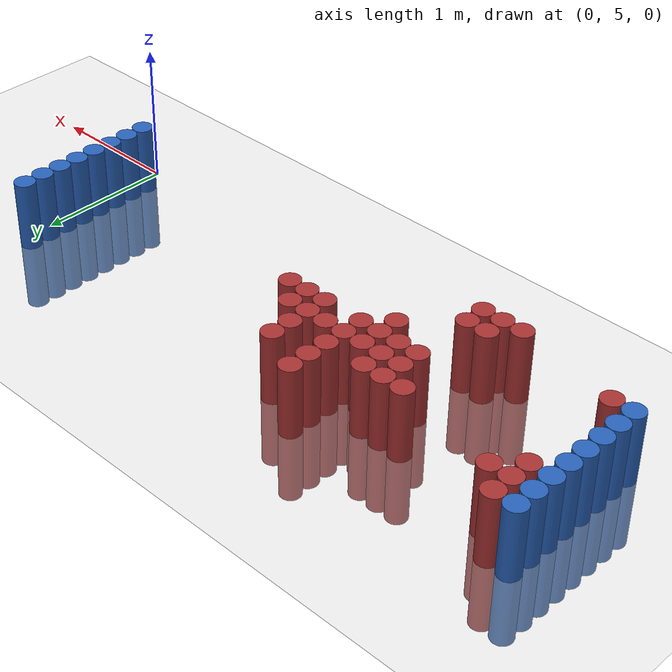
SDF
<sdf version="1.6">
 <world name="default">
  <model name="ground_plane">
   <static>1</static>
   <link name="link">
    <collision name="collision">
     <geometry><plane><normal>0 0 1</normal><size>100 100</size></plane></geometry>
     <surface><friction><ode><mu>100</mu><mu2>50</mu2></ode></friction></surface>
    </collision>
    <visual name="visual">
     <cast_shadows>0</cast_shadows>
     <geometry><plane><normal>0 0 1</normal><size>100 100</size></plane></geometry>
     <material>
      <script><uri>file://media/materials/scripts/gazebo.material</uri><name>Gazebo/Grey</name></script>
     </material>
    </visual>
   </link>
  </model>
  <model name="unit_cylinder_97">
   <static>1</static>
   <pose>-4.425000 5.325000 0.000000 0.000000 0.000000 0.000000</pose>
   <link name="link">
    <inertial>
     <mass>1</mass>
     <inertia><ixx>0.145833</ixx><ixy>0</ixy><ixz>0</ixz><iyy>0.145833</iyy><iyz>0</iyz><izz>0.125</izz></inertia>
    </inertial>
    <collision name="collision">
     <geometry><cylinder><radius>0.075000</radius><length>1</length></cylinder></geometry>
    </collision>
    <visual name="visual">
     <geometry><cylinder><radius>0.075000</radius><length>1</length></cylinder></geometry>
     <material>
      <ambient>0.152000 0.379000 0.720000 1</ambient>
      <diffuse>0.152000 0.379000 0.720000 1</diffuse>
     </material>
     <material>
      <script><name>Gazebo/Grey</name><uri>file://media/materials/scripts/gazebo.material</uri></script>
     </material>
    </visual>
   </link>
  </model>
  <model name="unit_cylinder_98">
   <static>1</static>
   <pose>-4.425000 5.475000 0.000000 0.000000 0.000000 0.000000</pose>
   <link name="link">
    <inertial>
     <mass>1</mass>
     <inertia><ixx>0.145833</ixx><ixy>0</ixy><ixz>0</ixz><iyy>0.145833</iyy><iyz>0</iyz><izz>0.125</izz></inertia>
    </inertial>
    <collision name="collision">
     <geometry><cylinder><radius>0.075000</radius><length>1</length></cylinder></geometry>
    </collision>
    <visual name="visual">
     <geometry><cylinder><radius>0.075000</radius><length>1</length></cylinder></geometry>
     <material>
      <ambient>0.152000 0.379000 0.720000 1</ambient>
      <diffuse>0.152000 0.379000 0.720000 1</diffuse>
     </material>
     <material>
      <script><name>Gazebo/Grey</name><uri>file://media/materials/scripts/gazebo.material</uri></script>
     </material>
    </visual>
   </link>
  </model>
  <model name="unit_cylinder_99">
   <static>1</static>
   <pose>-4.425000 5.625000 0.000000 0.000000 0.000000 0.000000</pose>
   <link name="link">
    <inertial>
     <mass>1</mass>
     <inertia><ixx>0.145833</ixx><ixy>0</ixy><ixz>0</ixz><iyy>0.145833</iyy><iyz>0</iyz><izz>0.125</izz></inertia>
    </inertial>
    <collision name="collision">
     <geometry><cylinder><radius>0.075000</radius><length>1</length></cylinder></geometry>
    </collision>
    <visual name="visual">
     <geometry><cylinder><radius>0.075000</radius><length>1</length></cylinder></geometry>
     <material>
      <ambient>0.152000 0.379000 0.720000 1</ambient>
      <diffuse>0.152000 0.379000 0.720000 1</diffuse>
     </material>
     <material>
      <script><name>Gazebo/Grey</name><uri>file://media/materials/scripts/gazebo.material</uri></script>
     </material>
    </visual>
   </link>
  </model>
  <model name="unit_cylinder_100">
   <static>1</static>
   <pose>-4.425000 5.775000 0.000000 0.000000 0.000000 0.000000</pose>
   <link name="link">
    <inertial>
     <mass>1</mass>
     <inertia><ixx>0.145833</ixx><ixy>0</ixy><ixz>0</ixz><iyy>0.145833</iyy><iyz>0</iyz><izz>0.125</izz></inertia>
    </inertial>
    <collision name="collision">
     <geometry><cylinder><radius>0.075000</radius><length>1</length></cylinder></geometry>
    </collision>
    <visual name="visual">
     <geometry><cylinder><radius>0.075000</radius><length>1</length></cylinder></geometry>
     <material>
      <ambient>0.152000 0.379000 0.720000 1</ambient>
      <diffuse>0.152000 0.379000 0.720000 1</diffuse>
     </material>
     <material>
      <script><name>Gazebo/Grey</name><uri>file://media/materials/scripts/gazebo.material</uri></script>
     </material>
    </visual>
   </link>
  </model>
  <model name="unit_cylinder_101">
   <static>1</static>
   <pose>-4.425000 5.925000 0.000000 0.000000 0.000000 0.000000</pose>
   <link name="link">
    <inertial>
     <mass>1</mass>
     <inertia><ixx>0.145833</ixx><ixy>0</ixy><ixz>0</ixz><iyy>0.145833</iyy><iyz>0</iyz><izz>0.125</izz></inertia>
    </inertial>
    <collision name="collision">
     <geometry><cylinder><radius>0.075000</radius><length>1</length></cylinder></geometry>
    </collision>
    <visual name="visual">
     <geometry><cylinder><radius>0.075000</radius><length>1</length></cylinder></geometry>
     <material>
      <ambient>0.152000 0.379000 0.720000 1</ambient>
      <diffuse>0.152000 0.379000 0.720000 1</diffuse>
     </material>
     <material>
      <script><name>Gazebo/Grey</name><uri>file://media/materials/scripts/gazebo.material</uri></script>
     </material>
    </visual>
   </link>
  </model>
  <model name="unit_cylinder_102">
   <static>1</static>
   <pose>-4.425000 6.075000 0.000000 0.000000 0.000000 0.000000</pose>
   <link name="link">
    <inertial>
     <mass>1</mass>
     <inertia><ixx>0.145833</ixx><ixy>0</ixy><ixz>0</ixz><iyy>0.145833</iyy><iyz>0</iyz><izz>0.125</izz></inertia>
    </inertial>
    <collision name="collision">
     <geometry><cylinder><radius>0.075000</radius><length>1</length></cylinder></geometry>
    </collision>
    <visual name="visual">
     <geometry><cylinder><radius>0.075000</radius><length>1</length></cylinder></geometry>
     <material>
      <ambient>0.152000 0.379000 0.720000 1</ambient>
      <diffuse>0.152000 0.379000 0.720000 1</diffuse>
     </material>
     <material>
      <script><name>Gazebo/Grey</name><uri>file://media/materials/scripts/gazebo.material</uri></script>
     </material>
    </visual>
   </link>
  </model>
  <model name="unit_cylinder_103">
   <static>1</static>
   <pose>-4.425000 6.225000 0.000000 0.000000 0.000000 0.000000</pose>
   <link name="link">
    <inertial>
     <mass>1</mass>
     <inertia><ixx>0.145833</ixx><ixy>0</ixy><ixz>0</ixz><iyy>0.145833</iyy><iyz>0</iyz><izz>0.125</izz></inertia>
    </inertial>
    <collision name="collision">
     <geometry><cylinder><radius>0.075000</radius><length>1</length></cylinder></geometry>
    </collision>
    <visual name="visual">
     <geometry><cylinder><radius>0.075000</radius><length>1</length></cylinder></geometry>
     <material>
      <ambient>0.152000 0.379000 0.720000 1</ambient>
      <diffuse>0.152000 0.379000 0.720000 1</diffuse>
     </material>
     <material>
      <script><name>Gazebo/Grey</name><uri>file://media/materials/scripts/gazebo.material</uri></script>
     </material>
    </visual>
   </link>
  </model>
  <model name="unit_cylinder_104">
   <static>1</static>
   <pose>-4.425000 6.375000 0.000000 0.000000 0.000000 0.000000</pose>
   <link name="link">
    <inertial>
     <mass>1</mass>
     <inertia><ixx>0.145833</ixx><ixy>0</ixy><ixz>0</ixz><iyy>0.145833</iyy><iyz>0</iyz><izz>0.125</izz></inertia>
    </inertial>
    <collision name="collision">
     <geometry><cylinder><radius>0.075000</radius><length>1</length></cylinder></geometry>
    </collision>
    <visual name="visual">
     <geometry><cylinder><radius>0.075000</radius><length>1</length></cylinder></geometry>
     <material>
      <ambient>0.152000 0.379000 0.720000 1</ambient>
      <diffuse>0.152000 0.379000 0.720000 1</diffuse>
     </material>
     <material>
      <script><name>Gazebo/Grey</name><uri>file://media/materials/scripts/gazebo.material</uri></script>
     </material>
    </visual>
   </link>
  </model>
  <model name="unit_cylinder_127">
   <static>1</static>
   <pose>-4.275000 5.325000 0.000000 0.000000 0.000000 0.000000</pose>
   <link name="link">
    <inertial>
     <mass>1</mass>
     <inertia><ixx>0.145833</ixx><ixy>0</ixy><ixz>0</ixz><iyy>0.145833</iyy><iyz>0</iyz><izz>0.125</izz></inertia>
    </inertial>
    <collision name="collision">
     <geometry><cylinder><radius>0.075000</radius><length>1</length></cylinder></geometry>
    </collision>
    <visual name="visual">
     <geometry><cylinder><radius>0.075000</radius><length>1</length></cylinder></geometry>
     <material>
      <ambient>0.648000 0.192000 0.192000 1</ambient>
      <diffuse>0.648000 0.192000 0.192000 1</diffuse>
     </material>
     <material>
      <script><name>Gazebo/Grey</name><uri>file://media/materials/scripts/gazebo.material</uri></script>
     </material>
    </visual>
   </link>
  </model>
  <model name="unit_cylinder_128">
   <static>1</static>
   <pose>-4.275000 6.075000 0.000000 0.000000 0.000000 0.000000</pose>
   <link name="link">
    <inertial>
     <mass>1</mass>
     <inertia><ixx>0.145833</ixx><ixy>0</ixy><ixz>0</ixz><iyy>0.145833</iyy><iyz>0</iyz><izz>0.125</izz></inertia>
    </inertial>
    <collision name="collision">
     <geometry><cylinder><radius>0.075000</radius><length>1</length></cylinder></geometry>
    </collision>
    <visual name="visual">
     <geometry><cylinder><radius>0.075000</radius><length>1</length></cylinder></geometry>
     <material>
      <ambient>0.648000 0.192000 0.192000 1</ambient>
      <diffuse>0.648000 0.192000 0.192000 1</diffuse>
     </material>
     <material>
      <script><name>Gazebo/Grey</name><uri>file://media/materials/scripts/gazebo.material</uri></script>
     </material>
    </visual>
   </link>
  </model>
  <model name="unit_cylinder_129">
   <static>1</static>
   <pose>-4.275000 6.225000 0.000000 0.000000 0.000000 0.000000</pose>
   <link name="link">
    <inertial>
     <mass>1</mass>
     <inertia><ixx>0.145833</ixx><ixy>0</ixy><ixz>0</ixz><iyy>0.145833</iyy><iyz>0</iyz><izz>0.125</izz></inertia>
    </inertial>
    <collision name="collision">
     <geometry><cylinder><radius>0.075000</radius><length>1</length></cylinder></geometry>
    </collision>
    <visual name="visual">
     <geometry><cylinder><radius>0.075000</radius><length>1</length></cylinder></geometry>
     <material>
      <ambient>0.648000 0.192000 0.192000 1</ambient>
      <diffuse>0.648000 0.192000 0.192000 1</diffuse>
     </material>
     <material>
      <script><name>Gazebo/Grey</name><uri>file://media/materials/scripts/gazebo.material</uri></script>
     </material>
    </visual>
   </link>
  </model>
  <model name="unit_cylinder_130">
   <static>1</static>
   <pose>-4.275000 6.375000 0.000000 0.000000 0.000000 0.000000</pose>
   <link name="link">
    <inertial>
     <mass>1</mass>
     <inertia><ixx>0.145833</ixx><ixy>0</ixy><ixz>0</ixz><iyy>0.145833</iyy><iyz>0</iyz><izz>0.125</izz></inertia>
    </inertial>
    <collision name="collision">
     <geometry><cylinder><radius>0.075000</radius><length>1</length></cylinder></geometry>
    </collision>
    <visual name="visual">
     <geometry><cylinder><radius>0.075000</radius><length>1</length></cylinder></geometry>
     <material>
      <ambient>0.648000 0.192000 0.192000 1</ambient>
      <diffuse>0.648000 0.192000 0.192000 1</diffuse>
     </material>
     <material>
      <script><name>Gazebo/Grey</name><uri>file://media/materials/scripts/gazebo.material</uri></script>
     </material>
    </visual>
   </link>
  </model>
  <model name="unit_cylinder_146">
   <static>1</static>
   <pose>-4.125000 6.225000 0.000000 0.000000 0.000000 0.000000</pose>
   <link name="link">
    <inertial>
     <mass>1</mass>
     <inertia><ixx>0.145833</ixx><ixy>0</ixy><ixz>0</ixz><iyy>0.145833</iyy><iyz>0</iyz><izz>0.125</izz></inertia>
    </inertial>
    <collision name="collision">
     <geometry><cylinder><radius>0.075000</radius><length>1</length></cylinder></geometry>
    </collision>
    <visual name="visual">
     <geometry><cylinder><radius>0.075000</radius><length>1</length></cylinder></geometry>
     <material>
      <ambient>0.648000 0.192000 0.192000 1</ambient>
      <diffuse>0.648000 0.192000 0.192000 1</diffuse>
     </material>
     <material>
      <script><name>Gazebo/Grey</name><uri>file://media/materials/scripts/gazebo.material</uri></script>
     </material>
    </visual>
   </link>
  </model>
  <model name="unit_cylinder_152">
   <static>1</static>
   <pose>-3.525000 5.175000 0.000000 0.000000 0.000000 0.000000</pose>
   <link name="link">
    <inertial>
     <mass>1</mass>
     <inertia><ixx>0.145833</ixx><ixy>0</ixy><ixz>0</ixz><iyy>0.145833</iyy><iyz>0</iyz><izz>0.125</izz></inertia>
    </inertial>
    <collision name="collision">
     <geometry><cylinder><radius>0.075000</radius><length>1</length></cylinder></geometry>
    </collision>
    <visual name="visual">
     <geometry><cylinder><radius>0.075000</radius><length>1</length></cylinder></geometry>
     <material>
      <ambient>0.648000 0.192000 0.192000 1</ambient>
      <diffuse>0.648000 0.192000 0.192000 1</diffuse>
     </material>
     <material>
      <script><name>Gazebo/Grey</name><uri>file://media/materials/scripts/gazebo.material</uri></script>
     </material>
    </visual>
   </link>
  </model>
  <model name="unit_cylinder_158">
   <static>1</static>
   <pose>-3.375000 5.175000 0.000000 0.000000 0.000000 0.000000</pose>
   <link name="link">
    <inertial>
     <mass>1</mass>
     <inertia><ixx>0.145833</ixx><ixy>0</ixy><ixz>0</ixz><iyy>0.145833</iyy><iyz>0</iyz><izz>0.125</izz></inertia>
    </inertial>
    <collision name="collision">
     <geometry><cylinder><radius>0.075000</radius><length>1</length></cylinder></geometry>
    </collision>
    <visual name="visual">
     <geometry><cylinder><radius>0.075000</radius><length>1</length></cylinder></geometry>
     <material>
      <ambient>0.648000 0.192000 0.192000 1</ambient>
      <diffuse>0.648000 0.192000 0.192000 1</diffuse>
     </material>
     <material>
      <script><name>Gazebo/Grey</name><uri>file://media/materials/scripts/gazebo.material</uri></script>
     </material>
    </visual>
   </link>
  </model>
  <model name="unit_cylinder_159">
   <static>1</static>
   <pose>-3.375000 5.325000 0.000000 0.000000 0.000000 0.000000</pose>
   <link name="link">
    <inertial>
     <mass>1</mass>
     <inertia><ixx>0.145833</ixx><ixy>0</ixy><ixz>0</ixz><iyy>0.145833</iyy><iyz>0</iyz><izz>0.125</izz></inertia>
    </inertial>
    <collision name="collision">
     <geometry><cylinder><radius>0.075000</radius><length>1</length></cylinder></geometry>
    </collision>
    <visual name="visual">
     <geometry><cylinder><radius>0.075000</radius><length>1</length></cylinder></geometry>
     <material>
      <ambient>0.648000 0.192000 0.192000 1</ambient>
      <diffuse>0.648000 0.192000 0.192000 1</diffuse>
     </material>
     <material>
      <script><name>Gazebo/Grey</name><uri>file://media/materials/scripts/gazebo.material</uri></script>
     </material>
    </visual>
   </link>
  </model>
  <model name="unit_cylinder_160">
   <static>1</static>
   <pose>-3.375000 6.075000 0.000000 0.000000 0.000000 0.000000</pose>
   <link name="link">
    <inertial>
     <mass>1</mass>
     <inertia><ixx>0.145833</ixx><ixy>0</ixy><ixz>0</ixz><iyy>0.145833</iyy><iyz>0</iyz><izz>0.125</izz></inertia>
    </inertial>
    <collision name="collision">
     <geometry><cylinder><radius>0.075000</radius><length>1</length></cylinder></geometry>
    </collision>
    <visual name="visual">
     <geometry><cylinder><radius>0.075000</radius><length>1</length></cylinder></geometry>
     <material>
      <ambient>0.648000 0.192000 0.192000 1</ambient>
      <diffuse>0.648000 0.192000 0.192000 1</diffuse>
     </material>
     <material>
      <script><name>Gazebo/Grey</name><uri>file://media/materials/scripts/gazebo.material</uri></script>
     </material>
    </visual>
   </link>
  </model>
  <model name="unit_cylinder_169">
   <static>1</static>
   <pose>-3.225000 5.175000 0.000000 0.000000 0.000000 0.000000</pose>
   <link name="link">
    <inertial>
     <mass>1</mass>
     <inertia><ixx>0.145833</ixx><ixy>0</ixy><ixz>0</ixz><iyy>0.145833</iyy><iyz>0</iyz><izz>0.125</izz></inertia>
    </inertial>
    <collision name="collision">
     <geometry><cylinder><radius>0.075000</radius><length>1</length></cylinder></geometry>
    </collision>
    <visual name="visual">
     <geometry><cylinder><radius>0.075000</radius><length>1</length></cylinder></geometry>
     <material>
      <ambient>0.648000 0.192000 0.192000 1</ambient>
      <diffuse>0.648000 0.192000 0.192000 1</diffuse>
     </material>
     <material>
      <script><name>Gazebo/Grey</name><uri>file://media/materials/scripts/gazebo.material</uri></script>
     </material>
    </visual>
   </link>
  </model>
  <model name="unit_cylinder_170">
   <static>1</static>
   <pose>-3.225000 5.325000 0.000000 0.000000 0.000000 0.000000</pose>
   <link name="link">
    <inertial>
     <mass>1</mass>
     <inertia><ixx>0.145833</ixx><ixy>0</ixy><ixz>0</ixz><iyy>0.145833</iyy><iyz>0</iyz><izz>0.125</izz></inertia>
    </inertial>
    <collision name="collision">
     <geometry><cylinder><radius>0.075000</radius><length>1</length></cylinder></geometry>
    </collision>
    <visual name="visual">
     <geometry><cylinder><radius>0.075000</radius><length>1</length></cylinder></geometry>
     <material>
      <ambient>0.648000 0.192000 0.192000 1</ambient>
      <diffuse>0.648000 0.192000 0.192000 1</diffuse>
     </material>
     <material>
      <script><name>Gazebo/Grey</name><uri>file://media/materials/scripts/gazebo.material</uri></script>
     </material>
    </visual>
   </link>
  </model>
  <model name="unit_cylinder_171">
   <static>1</static>
   <pose>-3.225000 5.775000 0.000000 0.000000 0.000000 0.000000</pose>
   <link name="link">
    <inertial>
     <mass>1</mass>
     <inertia><ixx>0.145833</ixx><ixy>0</ixy><ixz>0</ixz><iyy>0.145833</iyy><iyz>0</iyz><izz>0.125</izz></inertia>
    </inertial>
    <collision name="collision">
     <geometry><cylinder><radius>0.075000</radius><length>1</length></cylinder></geometry>
    </collision>
    <visual name="visual">
     <geometry><cylinder><radius>0.075000</radius><length>1</length></cylinder></geometry>
     <material>
      <ambient>0.648000 0.192000 0.192000 1</ambient>
      <diffuse>0.648000 0.192000 0.192000 1</diffuse>
     </material>
     <material>
      <script><name>Gazebo/Grey</name><uri>file://media/materials/scripts/gazebo.material</uri></script>
     </material>
    </visual>
   </link>
  </model>
  <model name="unit_cylinder_172">
   <static>1</static>
   <pose>-3.225000 5.925000 0.000000 0.000000 0.000000 0.000000</pose>
   <link name="link">
    <inertial>
     <mass>1</mass>
     <inertia><ixx>0.145833</ixx><ixy>0</ixy><ixz>0</ixz><iyy>0.145833</iyy><iyz>0</iyz><izz>0.125</izz></inertia>
    </inertial>
    <collision name="collision">
     <geometry><cylinder><radius>0.075000</radius><length>1</length></cylinder></geometry>
    </collision>
    <visual name="visual">
     <geometry><cylinder><radius>0.075000</radius><length>1</length></cylinder></geometry>
     <material>
      <ambient>0.648000 0.192000 0.192000 1</ambient>
      <diffuse>0.648000 0.192000 0.192000 1</diffuse>
     </material>
     <material>
      <script><name>Gazebo/Grey</name><uri>file://media/materials/scripts/gazebo.material</uri></script>
     </material>
    </visual>
   </link>
  </model>
  <model name="unit_cylinder_173">
   <static>1</static>
   <pose>-3.225000 6.075000 0.000000 0.000000 0.000000 0.000000</pose>
   <link name="link">
    <inertial>
     <mass>1</mass>
     <inertia><ixx>0.145833</ixx><ixy>0</ixy><ixz>0</ixz><iyy>0.145833</iyy><iyz>0</iyz><izz>0.125</izz></inertia>
    </inertial>
    <collision name="collision">
     <geometry><cylinder><radius>0.075000</radius><length>1</length></cylinder></geometry>
    </collision>
    <visual name="visual">
     <geometry><cylinder><radius>0.075000</radius><length>1</length></cylinder></geometry>
     <material>
      <ambient>0.648000 0.192000 0.192000 1</ambient>
      <diffuse>0.648000 0.192000 0.192000 1</diffuse>
     </material>
     <material>
      <script><name>Gazebo/Grey</name><uri>file://media/materials/scripts/gazebo.material</uri></script>
     </material>
    </visual>
   </link>
  </model>
  <model name="unit_cylinder_180">
   <static>1</static>
   <pose>-3.075000 5.775000 0.000000 0.000000 0.000000 0.000000</pose>
   <link name="link">
    <inertial>
     <mass>1</mass>
     <inertia><ixx>0.145833</ixx><ixy>0</ixy><ixz>0</ixz><iyy>0.145833</iyy><iyz>0</iyz><izz>0.125</izz></inertia>
    </inertial>
    <collision name="collision">
     <geometry><cylinder><radius>0.075000</radius><length>1</length></cylinder></geometry>
    </collision>
    <visual name="visual">
     <geometry><cylinder><radius>0.075000</radius><length>1</length></cylinder></geometry>
     <material>
      <ambient>0.648000 0.192000 0.192000 1</ambient>
      <diffuse>0.648000 0.192000 0.192000 1</diffuse>
     </material>
     <material>
      <script><name>Gazebo/Grey</name><uri>file://media/materials/scripts/gazebo.material</uri></script>
     </material>
    </visual>
   </link>
  </model>
  <model name="unit_cylinder_181">
   <static>1</static>
   <pose>-3.075000 5.925000 0.000000 0.000000 0.000000 0.000000</pose>
   <link name="link">
    <inertial>
     <mass>1</mass>
     <inertia><ixx>0.145833</ixx><ixy>0</ixy><ixz>0</ixz><iyy>0.145833</iyy><iyz>0</iyz><izz>0.125</izz></inertia>
    </inertial>
    <collision name="collision">
     <geometry><cylinder><radius>0.075000</radius><length>1</length></cylinder></geometry>
    </collision>
    <visual name="visual">
     <geometry><cylinder><radius>0.075000</radius><length>1</length></cylinder></geometry>
     <material>
      <ambient>0.648000 0.192000 0.192000 1</ambient>
      <diffuse>0.648000 0.192000 0.192000 1</diffuse>
     </material>
     <material>
      <script><name>Gazebo/Grey</name><uri>file://media/materials/scripts/gazebo.material</uri></script>
     </material>
    </visual>
   </link>
  </model>
  <model name="unit_cylinder_182">
   <static>1</static>
   <pose>-3.075000 6.075000 0.000000 0.000000 0.000000 0.000000</pose>
   <link name="link">
    <inertial>
     <mass>1</mass>
     <inertia><ixx>0.145833</ixx><ixy>0</ixy><ixz>0</ixz><iyy>0.145833</iyy><iyz>0</iyz><izz>0.125</izz></inertia>
    </inertial>
    <collision name="collision">
     <geometry><cylinder><radius>0.075000</radius><length>1</length></cylinder></geometry>
    </collision>
    <visual name="visual">
     <geometry><cylinder><radius>0.075000</radius><length>1</length></cylinder></geometry>
     <material>
      <ambient>0.648000 0.192000 0.192000 1</ambient>
      <diffuse>0.648000 0.192000 0.192000 1</diffuse>
     </material>
     <material>
      <script><name>Gazebo/Grey</name><uri>file://media/materials/scripts/gazebo.material</uri></script>
     </material>
    </visual>
   </link>
  </model>
  <model name="unit_cylinder_186">
   <static>1</static>
   <pose>-2.925000 5.625000 0.000000 0.000000 0.000000 0.000000</pose>
   <link name="link">
    <inertial>
     <mass>1</mass>
     <inertia><ixx>0.145833</ixx><ixy>0</ixy><ixz>0</ixz><iyy>0.145833</iyy><iyz>0</iyz><izz>0.125</izz></inertia>
    </inertial>
    <collision name="collision">
     <geometry><cylinder><radius>0.075000</radius><length>1</length></cylinder></geometry>
    </collision>
    <visual name="visual">
     <geometry><cylinder><radius>0.075000</radius><length>1</length></cylinder></geometry>
     <material>
      <ambient>0.648000 0.192000 0.192000 1</ambient>
      <diffuse>0.648000 0.192000 0.192000 1</diffuse>
     </material>
     <material>
      <script><name>Gazebo/Grey</name><uri>file://media/materials/scripts/gazebo.material</uri></script>
     </material>
    </visual>
   </link>
  </model>
  <model name="unit_cylinder_187">
   <static>1</static>
   <pose>-2.925000 5.775000 0.000000 0.000000 0.000000 0.000000</pose>
   <link name="link">
    <inertial>
     <mass>1</mass>
     <inertia><ixx>0.145833</ixx><ixy>0</ixy><ixz>0</ixz><iyy>0.145833</iyy><iyz>0</iyz><izz>0.125</izz></inertia>
    </inertial>
    <collision name="collision">
     <geometry><cylinder><radius>0.075000</radius><length>1</length></cylinder></geometry>
    </collision>
    <visual name="visual">
     <geometry><cylinder><radius>0.075000</radius><length>1</length></cylinder></geometry>
     <material>
      <ambient>0.648000 0.192000 0.192000 1</ambient>
      <diffuse>0.648000 0.192000 0.192000 1</diffuse>
     </material>
     <material>
      <script><name>Gazebo/Grey</name><uri>file://media/materials/scripts/gazebo.material</uri></script>
     </material>
    </visual>
   </link>
  </model>
  <model name="unit_cylinder_188">
   <static>1</static>
   <pose>-2.925000 5.925000 0.000000 0.000000 0.000000 0.000000</pose>
   <link name="link">
    <inertial>
     <mass>1</mass>
     <inertia><ixx>0.145833</ixx><ixy>0</ixy><ixz>0</ixz><iyy>0.145833</iyy><iyz>0</iyz><izz>0.125</izz></inertia>
    </inertial>
    <collision name="collision">
     <geometry><cylinder><radius>0.075000</radius><length>1</length></cylinder></geometry>
    </collision>
    <visual name="visual">
     <geometry><cylinder><radius>0.075000</radius><length>1</length></cylinder></geometry>
     <material>
      <ambient>0.648000 0.192000 0.192000 1</ambient>
      <diffuse>0.648000 0.192000 0.192000 1</diffuse>
     </material>
     <material>
      <script><name>Gazebo/Grey</name><uri>file://media/materials/scripts/gazebo.material</uri></script>
     </material>
    </visual>
   </link>
  </model>
  <model name="unit_cylinder_193">
   <static>1</static>
   <pose>-2.775000 5.775000 0.000000 0.000000 0.000000 0.000000</pose>
   <link name="link">
    <inertial>
     <mass>1</mass>
     <inertia><ixx>0.145833</ixx><ixy>0</ixy><ixz>0</ixz><iyy>0.145833</iyy><iyz>0</iyz><izz>0.125</izz></inertia>
    </inertial>
    <collision name="collision">
     <geometry><cylinder><radius>0.075000</radius><length>1</length></cylinder></geometry>
    </collision>
    <visual name="visual">
     <geometry><cylinder><radius>0.075000</radius><length>1</length></cylinder></geometry>
     <material>
      <ambient>0.648000 0.192000 0.192000 1</ambient>
      <diffuse>0.648000 0.192000 0.192000 1</diffuse>
     </material>
     <material>
      <script><name>Gazebo/Grey</name><uri>file://media/materials/scripts/gazebo.material</uri></script>
     </material>
    </visual>
   </link>
  </model>
  <model name="unit_cylinder_194">
   <static>1</static>
   <pose>-2.775000 5.925000 0.000000 0.000000 0.000000 0.000000</pose>
   <link name="link">
    <inertial>
     <mass>1</mass>
     <inertia><ixx>0.145833</ixx><ixy>0</ixy><ixz>0</ixz><iyy>0.145833</iyy><iyz>0</iyz><izz>0.125</izz></inertia>
    </inertial>
    <collision name="collision">
     <geometry><cylinder><radius>0.075000</radius><length>1</length></cylinder></geometry>
    </collision>
    <visual name="visual">
     <geometry><cylinder><radius>0.075000</radius><length>1</length></cylinder></geometry>
     <material>
      <ambient>0.648000 0.192000 0.192000 1</ambient>
      <diffuse>0.648000 0.192000 0.192000 1</diffuse>
     </material>
     <material>
      <script><name>Gazebo/Grey</name><uri>file://media/materials/scripts/gazebo.material</uri></script>
     </material>
    </visual>
   </link>
  </model>
  <model name="unit_cylinder_195">
   <static>1</static>
   <pose>-2.775000 6.075000 0.000000 0.000000 0.000000 0.000000</pose>
   <link name="link">
    <inertial>
     <mass>1</mass>
     <inertia><ixx>0.145833</ixx><ixy>0</ixy><ixz>0</ixz><iyy>0.145833</iyy><iyz>0</iyz><izz>0.125</izz></inertia>
    </inertial>
    <collision name="collision">
     <geometry><cylinder><radius>0.075000</radius><length>1</length></cylinder></geometry>
    </collision>
    <visual name="visual">
     <geometry><cylinder><radius>0.075000</radius><length>1</length></cylinder></geometry>
     <material>
      <ambient>0.648000 0.192000 0.192000 1</ambient>
      <diffuse>0.648000 0.192000 0.192000 1</diffuse>
     </material>
     <material>
      <script><name>Gazebo/Grey</name><uri>file://media/materials/scripts/gazebo.material</uri></script>
     </material>
    </visual>
   </link>
  </model>
  <model name="unit_cylinder_196">
   <static>1</static>
   <pose>-2.775000 6.225000 0.000000 0.000000 0.000000 0.000000</pose>
   <link name="link">
    <inertial>
     <mass>1</mass>
     <inertia><ixx>0.145833</ixx><ixy>0</ixy><ixz>0</ixz><iyy>0.145833</iyy><iyz>0</iyz><izz>0.125</izz></inertia>
    </inertial>
    <collision name="collision">
     <geometry><cylinder><radius>0.075000</radius><length>1</length></cylinder></geometry>
    </collision>
    <visual name="visual">
     <geometry><cylinder><radius>0.075000</radius><length>1</length></cylinder></geometry>
     <material>
      <ambient>0.648000 0.192000 0.192000 1</ambient>
      <diffuse>0.648000 0.192000 0.192000 1</diffuse>
     </material>
     <material>
      <script><name>Gazebo/Grey</name><uri>file://media/materials/scripts/gazebo.material</uri></script>
     </material>
    </visual>
   </link>
  </model>
  <model name="unit_cylinder_197">
   <static>1</static>
   <pose>-2.775000 6.375000 0.000000 0.000000 0.000000 0.000000</pose>
   <link name="link">
    <inertial>
     <mass>1</mass>
     <inertia><ixx>0.145833</ixx><ixy>0</ixy><ixz>0</ixz><iyy>0.145833</iyy><iyz>0</iyz><izz>0.125</izz></inertia>
    </inertial>
    <collision name="collision">
     <geometry><cylinder><radius>0.075000</radius><length>1</length></cylinder></geometry>
    </collision>
    <visual name="visual">
     <geometry><cylinder><radius>0.075000</radius><length>1</length></cylinder></geometry>
     <material>
      <ambient>0.648000 0.192000 0.192000 1</ambient>
      <diffuse>0.648000 0.192000 0.192000 1</diffuse>
     </material>
     <material>
      <script><name>Gazebo/Grey</name><uri>file://media/materials/scripts/gazebo.material</uri></script>
     </material>
    </visual>
   </link>
  </model>
  <model name="unit_cylinder_211">
   <static>1</static>
   <pose>-2.625000 5.925000 0.000000 0.000000 0.000000 0.000000</pose>
   <link name="link">
    <inertial>
     <mass>1</mass>
     <inertia><ixx>0.145833</ixx><ixy>0</ixy><ixz>0</ixz><iyy>0.145833</iyy><iyz>0</iyz><izz>0.125</izz></inertia>
    </inertial>
    <collision name="collision">
     <geometry><cylinder><radius>0.075000</radius><length>1</length></cylinder></geometry>
    </collision>
    <visual name="visual">
     <geometry><cylinder><radius>0.075000</radius><length>1</length></cylinder></geometry>
     <material>
      <ambient>0.648000 0.192000 0.192000 1</ambient>
      <diffuse>0.648000 0.192000 0.192000 1</diffuse>
     </material>
     <material>
      <script><name>Gazebo/Grey</name><uri>file://media/materials/scripts/gazebo.material</uri></script>
     </material>
    </visual>
   </link>
  </model>
  <model name="unit_cylinder_220">
   <static>1</static>
   <pose>-2.475000 5.775000 0.000000 0.000000 0.000000 0.000000</pose>
   <link name="link">
    <inertial>
     <mass>1</mass>
     <inertia><ixx>0.145833</ixx><ixy>0</ixy><ixz>0</ixz><iyy>0.145833</iyy><iyz>0</iyz><izz>0.125</izz></inertia>
    </inertial>
    <collision name="collision">
     <geometry><cylinder><radius>0.075000</radius><length>1</length></cylinder></geometry>
    </collision>
    <visual name="visual">
     <geometry><cylinder><radius>0.075000</radius><length>1</length></cylinder></geometry>
     <material>
      <ambient>0.648000 0.192000 0.192000 1</ambient>
      <diffuse>0.648000 0.192000 0.192000 1</diffuse>
     </material>
     <material>
      <script><name>Gazebo/Grey</name><uri>file://media/materials/scripts/gazebo.material</uri></script>
     </material>
    </visual>
   </link>
  </model>
  <model name="unit_cylinder_221">
   <static>1</static>
   <pose>-2.475000 5.925000 0.000000 0.000000 0.000000 0.000000</pose>
   <link name="link">
    <inertial>
     <mass>1</mass>
     <inertia><ixx>0.145833</ixx><ixy>0</ixy><ixz>0</ixz><iyy>0.145833</iyy><iyz>0</iyz><izz>0.125</izz></inertia>
    </inertial>
    <collision name="collision">
     <geometry><cylinder><radius>0.075000</radius><length>1</length></cylinder></geometry>
    </collision>
    <visual name="visual">
     <geometry><cylinder><radius>0.075000</radius><length>1</length></cylinder></geometry>
     <material>
      <ambient>0.648000 0.192000 0.192000 1</ambient>
      <diffuse>0.648000 0.192000 0.192000 1</diffuse>
     </material>
     <material>
      <script><name>Gazebo/Grey</name><uri>file://media/materials/scripts/gazebo.material</uri></script>
     </material>
    </visual>
   </link>
  </model>
  <model name="unit_cylinder_222">
   <static>1</static>
   <pose>-2.475000 6.075000 0.000000 0.000000 0.000000 0.000000</pose>
   <link name="link">
    <inertial>
     <mass>1</mass>
     <inertia><ixx>0.145833</ixx><ixy>0</ixy><ixz>0</ixz><iyy>0.145833</iyy><iyz>0</iyz><izz>0.125</izz></inertia>
    </inertial>
    <collision name="collision">
     <geometry><cylinder><radius>0.075000</radius><length>1</length></cylinder></geometry>
    </collision>
    <visual name="visual">
     <geometry><cylinder><radius>0.075000</radius><length>1</length></cylinder></geometry>
     <material>
      <ambient>0.648000 0.192000 0.192000 1</ambient>
      <diffuse>0.648000 0.192000 0.192000 1</diffuse>
     </material>
     <material>
      <script><name>Gazebo/Grey</name><uri>file://media/materials/scripts/gazebo.material</uri></script>
     </material>
    </visual>
   </link>
  </model>
  <model name="unit_cylinder_223">
   <static>1</static>
   <pose>-2.475000 6.225000 0.000000 0.000000 0.000000 0.000000</pose>
   <link name="link">
    <inertial>
     <mass>1</mass>
     <inertia><ixx>0.145833</ixx><ixy>0</ixy><ixz>0</ixz><iyy>0.145833</iyy><iyz>0</iyz><izz>0.125</izz></inertia>
    </inertial>
    <collision name="collision">
     <geometry><cylinder><radius>0.075000</radius><length>1</length></cylinder></geometry>
    </collision>
    <visual name="visual">
     <geometry><cylinder><radius>0.075000</radius><length>1</length></cylinder></geometry>
     <material>
      <ambient>0.648000 0.192000 0.192000 1</ambient>
      <diffuse>0.648000 0.192000 0.192000 1</diffuse>
     </material>
     <material>
      <script><name>Gazebo/Grey</name><uri>file://media/materials/scripts/gazebo.material</uri></script>
     </material>
    </visual>
   </link>
  </model>
  <model name="unit_cylinder_228">
   <static>1</static>
   <pose>-2.325000 5.775000 0.000000 0.000000 0.000000 0.000000</pose>
   <link name="link">
    <inertial>
     <mass>1</mass>
     <inertia><ixx>0.145833</ixx><ixy>0</ixy><ixz>0</ixz><iyy>0.145833</iyy><iyz>0</iyz><izz>0.125</izz></inertia>
    </inertial>
    <collision name="collision">
     <geometry><cylinder><radius>0.075000</radius><length>1</length></cylinder></geometry>
    </collision>
    <visual name="visual">
     <geometry><cylinder><radius>0.075000</radius><length>1</length></cylinder></geometry>
     <material>
      <ambient>0.648000 0.192000 0.192000 1</ambient>
      <diffuse>0.648000 0.192000 0.192000 1</diffuse>
     </material>
     <material>
      <script><name>Gazebo/Grey</name><uri>file://media/materials/scripts/gazebo.material</uri></script>
     </material>
    </visual>
   </link>
  </model>
  <model name="unit_cylinder_229">
   <static>1</static>
   <pose>-2.325000 5.925000 0.000000 0.000000 0.000000 0.000000</pose>
   <link name="link">
    <inertial>
     <mass>1</mass>
     <inertia><ixx>0.145833</ixx><ixy>0</ixy><ixz>0</ixz><iyy>0.145833</iyy><iyz>0</iyz><izz>0.125</izz></inertia>
    </inertial>
    <collision name="collision">
     <geometry><cylinder><radius>0.075000</radius><length>1</length></cylinder></geometry>
    </collision>
    <visual name="visual">
     <geometry><cylinder><radius>0.075000</radius><length>1</length></cylinder></geometry>
     <material>
      <ambient>0.648000 0.192000 0.192000 1</ambient>
      <diffuse>0.648000 0.192000 0.192000 1</diffuse>
     </material>
     <material>
      <script><name>Gazebo/Grey</name><uri>file://media/materials/scripts/gazebo.material</uri></script>
     </material>
    </visual>
   </link>
  </model>
  <model name="unit_cylinder_230">
   <static>1</static>
   <pose>-2.175000 5.775000 0.000000 0.000000 0.000000 0.000000</pose>
   <link name="link">
    <inertial>
     <mass>1</mass>
     <inertia><ixx>0.145833</ixx><ixy>0</ixy><ixz>0</ixz><iyy>0.145833</iyy><iyz>0</iyz><izz>0.125</izz></inertia>
    </inertial>
    <collision name="collision">
     <geometry><cylinder><radius>0.075000</radius><length>1</length></cylinder></geometry>
    </collision>
    <visual name="visual">
     <geometry><cylinder><radius>0.075000</radius><length>1</length></cylinder></geometry>
     <material>
      <ambient>0.648000 0.192000 0.192000 1</ambient>
      <diffuse>0.648000 0.192000 0.192000 1</diffuse>
     </material>
     <material>
      <script><name>Gazebo/Grey</name><uri>file://media/materials/scripts/gazebo.material</uri></script>
     </material>
    </visual>
   </link>
  </model>
  <model name="unit_cylinder_265">
   <static>1</static>
   <pose>-0.075000 5.175000 0.000000 0.000000 0.000000 0.000000</pose>
   <link name="link">
    <inertial>
     <mass>1</mass>
     <inertia><ixx>0.145833</ixx><ixy>0</ixy><ixz>0</ixz><iyy>0.145833</iyy><iyz>0</iyz><izz>0.125</izz></inertia>
    </inertial>
    <collision name="collision">
     <geometry><cylinder><radius>0.075000</radius><length>1</length></cylinder></geometry>
    </collision>
    <visual name="visual">
     <geometry><cylinder><radius>0.075000</radius><length>1</length></cylinder></geometry>
     <material>
      <ambient>0.152000 0.379000 0.720000 1</ambient>
      <diffuse>0.152000 0.379000 0.720000 1</diffuse>
     </material>
     <material>
      <script><name>Gazebo/Grey</name><uri>file://media/materials/scripts/gazebo.material</uri></script>
     </material>
    </visual>
   </link>
  </model>
  <model name="unit_cylinder_266">
   <static>1</static>
   <pose>-0.075000 5.325000 0.000000 0.000000 0.000000 0.000000</pose>
   <link name="link">
    <inertial>
     <mass>1</mass>
     <inertia><ixx>0.145833</ixx><ixy>0</ixy><ixz>0</ixz><iyy>0.145833</iyy><iyz>0</iyz><izz>0.125</izz></inertia>
    </inertial>
    <collision name="collision">
     <geometry><cylinder><radius>0.075000</radius><length>1</length></cylinder></geometry>
    </collision>
    <visual name="visual">
     <geometry><cylinder><radius>0.075000</radius><length>1</length></cylinder></geometry>
     <material>
      <ambient>0.152000 0.379000 0.720000 1</ambient>
      <diffuse>0.152000 0.379000 0.720000 1</diffuse>
     </material>
     <material>
      <script><name>Gazebo/Grey</name><uri>file://media/materials/scripts/gazebo.material</uri></script>
     </material>
    </visual>
   </link>
  </model>
  <model name="unit_cylinder_267">
   <static>1</static>
   <pose>-0.075000 5.475000 0.000000 0.000000 0.000000 0.000000</pose>
   <link name="link">
    <inertial>
     <mass>1</mass>
     <inertia><ixx>0.145833</ixx><ixy>0</ixy><ixz>0</ixz><iyy>0.145833</iyy><iyz>0</iyz><izz>0.125</izz></inertia>
    </inertial>
    <collision name="collision">
     <geometry><cylinder><radius>0.075000</radius><length>1</length></cylinder></geometry>
    </collision>
    <visual name="visual">
     <geometry><cylinder><radius>0.075000</radius><length>1</length></cylinder></geometry>
     <material>
      <ambient>0.152000 0.379000 0.720000 1</ambient>
      <diffuse>0.152000 0.379000 0.720000 1</diffuse>
     </material>
     <material>
      <script><name>Gazebo/Grey</name><uri>file://media/materials/scripts/gazebo.material</uri></script>
     </material>
    </visual>
   </link>
  </model>
  <model name="unit_cylinder_268">
   <static>1</static>
   <pose>-0.075000 5.625000 0.000000 0.000000 0.000000 0.000000</pose>
   <link name="link">
    <inertial>
     <mass>1</mass>
     <inertia><ixx>0.145833</ixx><ixy>0</ixy><ixz>0</ixz><iyy>0.145833</iyy><iyz>0</iyz><izz>0.125</izz></inertia>
    </inertial>
    <collision name="collision">
     <geometry><cylinder><radius>0.075000</radius><length>1</length></cylinder></geometry>
    </collision>
    <visual name="visual">
     <geometry><cylinder><radius>0.075000</radius><length>1</length></cylinder></geometry>
     <material>
      <ambient>0.152000 0.379000 0.720000 1</ambient>
      <diffuse>0.152000 0.379000 0.720000 1</diffuse>
     </material>
     <material>
      <script><name>Gazebo/Grey</name><uri>file://media/materials/scripts/gazebo.material</uri></script>
     </material>
    </visual>
   </link>
  </model>
  <model name="unit_cylinder_269">
   <static>1</static>
   <pose>-0.075000 5.775000 0.000000 0.000000 0.000000 0.000000</pose>
   <link name="link">
    <inertial>
     <mass>1</mass>
     <inertia><ixx>0.145833</ixx><ixy>0</ixy><ixz>0</ixz><iyy>0.145833</iyy><iyz>0</iyz><izz>0.125</izz></inertia>
    </inertial>
    <collision name="collision">
     <geometry><cylinder><radius>0.075000</radius><length>1</length></cylinder></geometry>
    </collision>
    <visual name="visual">
     <geometry><cylinder><radius>0.075000</radius><length>1</length></cylinder></geometry>
     <material>
      <ambient>0.152000 0.379000 0.720000 1</ambient>
      <diffuse>0.152000 0.379000 0.720000 1</diffuse>
     </material>
     <material>
      <script><name>Gazebo/Grey</name><uri>file://media/materials/scripts/gazebo.material</uri></script>
     </material>
    </visual>
   </link>
  </model>
  <model name="unit_cylinder_270">
   <static>1</static>
   <pose>-0.075000 5.925000 0.000000 0.000000 0.000000 0.000000</pose>
   <link name="link">
    <inertial>
     <mass>1</mass>
     <inertia><ixx>0.145833</ixx><ixy>0</ixy><ixz>0</ixz><iyy>0.145833</iyy><iyz>0</iyz><izz>0.125</izz></inertia>
    </inertial>
    <collision name="collision">
     <geometry><cylinder><radius>0.075000</radius><length>1</length></cylinder></geometry>
    </collision>
    <visual name="visual">
     <geometry><cylinder><radius>0.075000</radius><length>1</length></cylinder></geometry>
     <material>
      <ambient>0.152000 0.379000 0.720000 1</ambient>
      <diffuse>0.152000 0.379000 0.720000 1</diffuse>
     </material>
     <material>
      <script><name>Gazebo/Grey</name><uri>file://media/materials/scripts/gazebo.material</uri></script>
     </material>
    </visual>
   </link>
  </model>
  <model name="unit_cylinder_271">
   <static>1</static>
   <pose>-0.075000 6.075000 0.000000 0.000000 0.000000 0.000000</pose>
   <link name="link">
    <inertial>
     <mass>1</mass>
     <inertia><ixx>0.145833</ixx><ixy>0</ixy><ixz>0</ixz><iyy>0.145833</iyy><iyz>0</iyz><izz>0.125</izz></inertia>
    </inertial>
    <collision name="collision">
     <geometry><cylinder><radius>0.075000</radius><length>1</length></cylinder></geometry>
    </collision>
    <visual name="visual">
     <geometry><cylinder><radius>0.075000</radius><length>1</length></cylinder></geometry>
     <material>
      <ambient>0.152000 0.379000 0.720000 1</ambient>
      <diffuse>0.152000 0.379000 0.720000 1</diffuse>
     </material>
     <material>
      <script><name>Gazebo/Grey</name><uri>file://media/materials/scripts/gazebo.material</uri></script>
     </material>
    </visual>
   </link>
  </model>
  <model name="unit_cylinder_272">
   <static>1</static>
   <pose>-0.075000 6.225000 0.000000 0.000000 0.000000 0.000000</pose>
   <link name="link">
    <inertial>
     <mass>1</mass>
     <inertia><ixx>0.145833</ixx><ixy>0</ixy><ixz>0</ixz><iyy>0.145833</iyy><iyz>0</iyz><izz>0.125</izz></inertia>
    </inertial>
    <collision name="collision">
     <geometry><cylinder><radius>0.075000</radius><length>1</length></cylinder></geometry>
    </collision>
    <visual name="visual">
     <geometry><cylinder><radius>0.075000</radius><length>1</length></cylinder></geometry>
     <material>
      <ambient>0.152000 0.379000 0.720000 1</ambient>
      <diffuse>0.152000 0.379000 0.720000 1</diffuse>
     </material>
     <material>
      <script><name>Gazebo/Grey</name><uri>file://media/materials/scripts/gazebo.material</uri></script>
     </material>
    </visual>
   </link>
  </model>
 </world>
</sdf>
